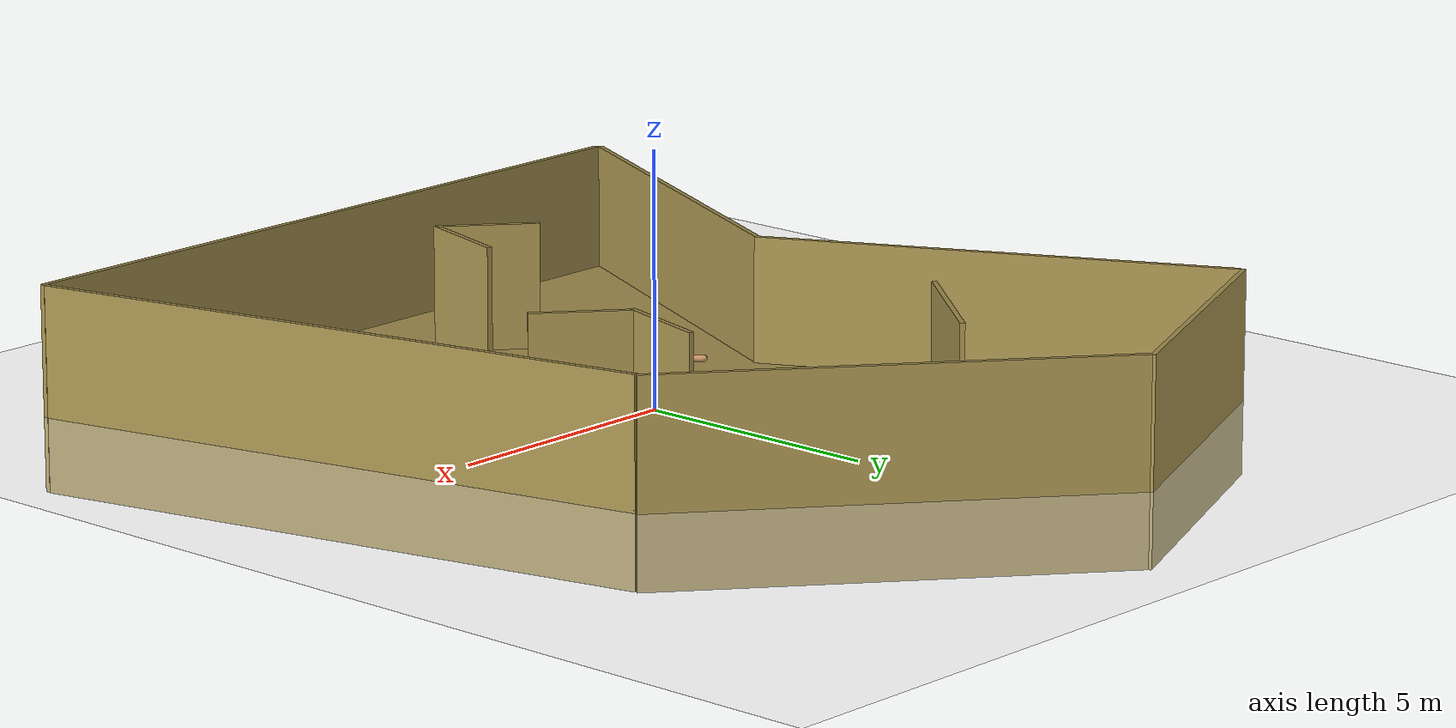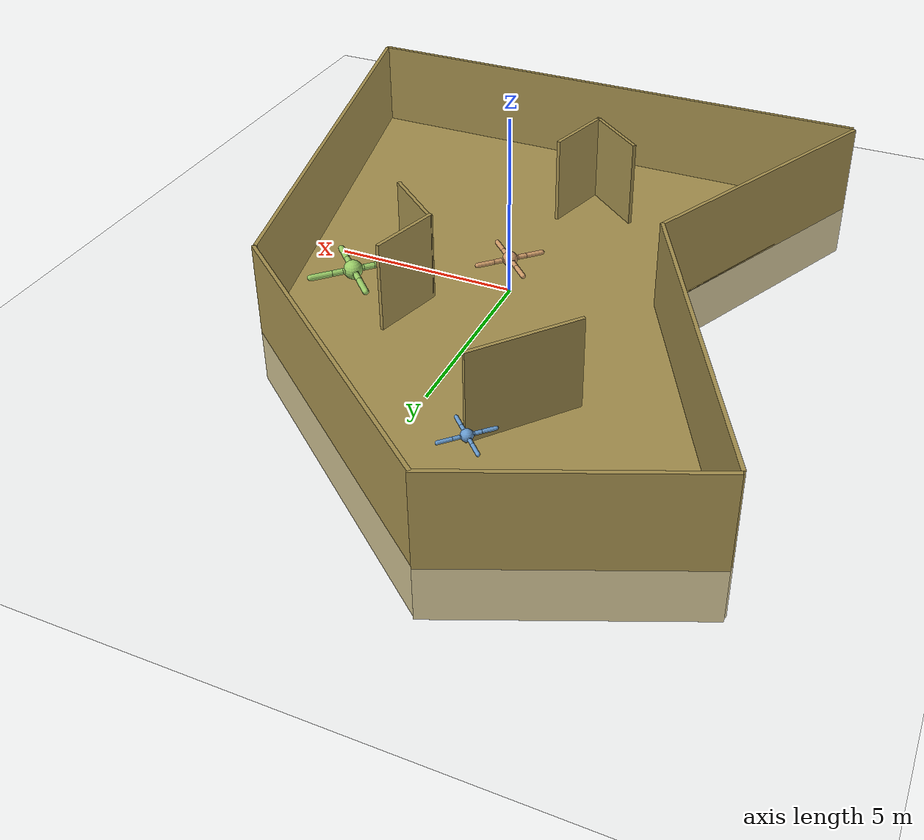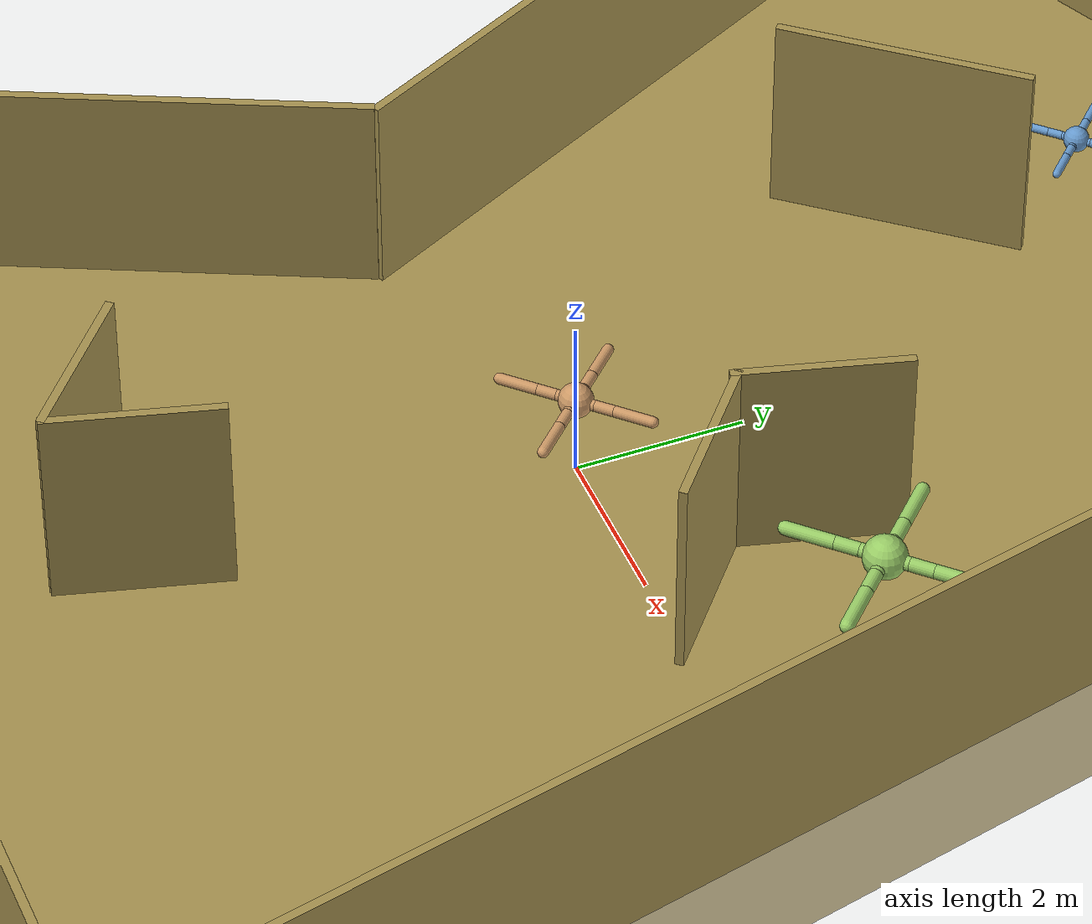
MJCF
<mujoco model="chase">
  <compiler angle="degree" coordinate="local" inertiafromgeom="true" meshdir="include/"/>
  <option integrator="RK4" timestep="0.01"/>
  <size nconmax="1000" njmax="1000"/>

  <default>
    <joint armature="1" damping="1" limited="true"/>
    <default class="ant">
      <geom conaffinity="1" condim="3" density="5.0" friction="1 0.5 0.5" margin="0.01" rgba="0.8 0.6 0.4 1" material="geom"/>
      <motor ctrllimited="true" ctrlrange="-0.3 0.3"/>
    </default>

    <default class="bug">
      <geom conaffinity="1" condim="3" density="5.0" friction="1 0.5 0.5" margin="0.01" rgba="0.4 0.6 0.8 1" material="geom"/>
      <motor ctrllimited="true" ctrlrange="-0.2 0.2"/>
    </default>
    <default class="spider">
      <geom conaffinity="1" condim="3" density="5.0" friction="1 0.5 0.5" margin="0.01" rgba="0.6 0.8 0.4 1" material="geom"/>
      <motor ctrllimited="true" ctrlrange="-0.3 0.3"/>
    </default>
  </default>
  <asset>
    <mesh name="platform" file="platform.STL"/>

    <texture builtin="gradient" height="100" rgb1=".8 .8 1" rgb2="0 0 0" type="skybox" width="100"/>
    <texture builtin="flat" height="1278" mark="cross" markrgb="1 1 1" name="texgeom" random="0.01" rgb1="0.8 0.6 0.4" rgb2="0.8 0.6 0.4" type="cube" width="127"/>
    <texture builtin="flat" height="100" name="floorplane" rgb1=".2 0.2 0.2" rgb2="0 0 0" type="2d" width="100"/>
    <texture builtin="flat" height="100" name="tatamiplane" rgb1=".65 0.57 0.31" rgb2="0 0 0" type="2d" width="100"/>
    <material name="MatPlane" reflectance="0.1" shininess="1" specular="1" texrepeat="1 1" texture="floorplane"/>
    <material name="TatamiPlane" reflectance="0.25" shininess="1" specular="1" texrepeat="1 1" texture="tatamiplane"/>
    <material name="geom" texture="texgeom" texuniform="true"/>
  </asset>
  <worldbody>
    <light cutoff="100" diffuse="1 1 1" dir="0 0 -1.3" directional="true" exponent="2" pos="0 0 1.3" specular=".5 .5 .5"/>
    <camera name="topcam" pos="0 0 30" zaxis="0 0 1" />
    <geom contype="1" conaffinity="1" friction="1 .1 .1" condim="3" material="MatPlane" name="floor" pos="0 0 -.025" rgba="1 1 1 1" size="20 20 0.125" type="plane"/>
    <geom name="platform" conaffinity="1" condim="3" contype="1" friction="1 .1 .1" material="TatamiPlane" mesh="platform" pos="-8 10 0" type="mesh" euler="90 0 0"/>

    <geom name="wall1" size="7.5 0.05 2.0" conaffinity="1" condim="3" contype="1" friction=".1 .1 .1" material="TatamiPlane" pos="0.35 -8.2 0.5" type="box" euler="0 0 0"/>
    <geom name="wall2" size="4.0 0.05 2.0" conaffinity="1" condim="3" contype="1" friction=".1 .1 .1" material="TatamiPlane" pos="-5.5 -4.5 0.5" type="box" euler="0 0 65"/>
    <geom name="wall3" size="4.7 0.05 2.0" conaffinity="1" condim="3" contype="1" friction=".1 .1 .1" material="TatamiPlane" pos="-5.9 3.3 0.5" type="box" euler="0 0 -63"/>
    <geom name="wall4" size="3.2 0.05 2.0" conaffinity="1" condim="3" contype="1" friction=".1 .1 .1" material="TatamiPlane" pos="-5.1 8.8 0.5" type="box" euler="0 0 23"/>
    <geom name="wall5" size="4.65 0.05 2.0" conaffinity="1" condim="3" contype="1" friction=".1 .1 .1" material="TatamiPlane" pos="1.4 7.1 0.5" type="box" euler="0 0 -39"/>
    <geom name="wall6" size="6.3 0.05 2.0" conaffinity="1" condim="3" contype="1" friction=".1 .1 .1" material="TatamiPlane" pos="6.4 -2.0 0.5" type="box" euler="0 0 -77"/>

    <geom name="ob_1" size="1.5 0.05 2.0" conaffinity="1" condim="3" contype="1" friction="1 .1 .1" material="TatamiPlane" pos="-2.5 5 0.5" type="box" euler="0 0 50"/>

    <geom name="ob_21" size="1.0 0.05 2.0" conaffinity="1" condim="3" contype="1" friction="1 .1 .1" material="TatamiPlane" pos="0 -5 0.5" type="box" euler="0 0 75"/>
    <geom name="ob_22" size="1.0 0.05 2.0" conaffinity="1" condim="3" contype="1" friction="1 .1 .1" material="TatamiPlane" pos="-1 -5.3 0.5" type="box" euler="0 0 -40"/>

    <geom name="ob_31" size="1.0 0.05 2.0" conaffinity="1" condim="3" contype="1" friction="1 .1 .1" material="TatamiPlane" pos="2 2 0.5" type="box" euler="0 0 75"/>
    <geom name="ob_32" size="1.0 0.05 2.0" conaffinity="1" condim="3" contype="1" friction="1 .1 .1" material="TatamiPlane" pos="2.5 .5 0.5" type="box" euler="0 0 -40"/>

    <include file="include/ant.xml" />
    <include file="include/bug.xml" />
    <include file="include/spider.xml" />
  </worldbody>
  <include file="include/ant-sensor-actuator.xml" />
  <include file="include/bug-sensor-actuator.xml" />
  <include file="include/spider-sensor-actuator.xml" />
</mujoco>

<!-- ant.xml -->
<mujocoinclude>
  <body name="torso" pos="0 0 1">
    <geom class="ant" name="torso_geom" pos="0 0 0" size="0.20" type="sphere"/>
    <joint armature="0" damping="0" limited="false" margin="0.01" name="root" pos="0 0 0" type="free"/>
    <!-- Front left leg -->
    <body name="front_left_leg" pos="0 0 0">
      <geom class="ant" fromto="0.0 0.0 0.0 -0.16 0.16 0.0" name="aux_1_geom" size="0.064" type="capsule"/>
      <body name="aux_11" pos="-0.16 0.16 0">
        <joint axis="0 0 1" name="hip_1" pos="0.0 0.0 0.0" range="-30 30" type="hinge"/>
        <geom class="ant" fromto="0.0 0.0 0.0 -0.16 0.16 0.0" name="front_left_leg_geom" size="0.064" type="capsule"/>
        <body name="aux_12" pos="-0.16 0.16 0">
          <joint axis="1 1 0" name="ankle_1" pos="0.0 0.0 0.0" range="-70 -30" type="hinge"/>
          <geom class="ant" fromto="0.0 0.0 0.0 -0.32 0.32 0.0" name="front_left_ankle_geom" size="0.064" type="capsule"/>
        </body>
      </body>
    </body>
    <!-- Front right leg -->
    <body name="front_right_leg" pos="0 0 0">
      <geom class="ant" fromto="0.0 0.0 0.0 0.16 0.16 0.0" name="aux_2_geom" size="0.064" type="capsule"/>
      <body name="aux_21" pos="0.16 0.16 0">
        <joint axis="0 0 1" name="hip_2" pos="0.0 0.0 0.0" range="-30 30" type="hinge"/>
        <geom class="ant" fromto="0.0 0.0 0.0 0.16 0.16 0.0" name="front_right_leg_geom" size="0.064" type="capsule"/>
        <body name="aux_22" pos="0.16 0.16 0">
          <joint axis="-1 1 0" name="ankle_2" pos="0.0 0.0 0.0" range="30 70" type="hinge"/>
          <geom class="ant" fromto="0.0 0.0 0.0 0.32 0.32 0.0" name="front_right_ankle_geom" size="0.064" type="capsule"/>
        </body>
      </body>
    </body>
    <!-- Back left leg -->
    <body name="back_left_leg" pos="0 0 0">
      <geom class="ant" fromto="0.0 0.0 0.0 -0.16 -0.16 0.0" name="aux_3_geom" size="0.064" type="capsule"/>
      <body name="aux_31" pos="-0.16 -0.16 0">
        <joint axis="0 0 1" name="hip_3" pos="0.0 0.0 0.0" range="-30 30" type="hinge"/>
        <geom class="ant" fromto="0.0 0.0 0.0 -0.16 -0.16 0.0" name="back_left_leg_geom" size="0.064" type="capsule"/>
        <body name="aux_32" pos="-0.16 -0.16 0">
          <joint axis="-1 1 0" name="ankle_3" pos="0.0 0.0 0.0" range="-70 -30" type="hinge"/>
          <geom class="ant" fromto="0.0 0.0 0.0 -0.32 -0.32 0.0" name="back_left_ankle_geom" size="0.064" type="capsule"/>
        </body>
      </body>
    </body>
    <body name="back_right_leg" pos="0 0 0">
      <geom class="ant" fromto="0.0 0.0 0.0 0.16 -0.16 0.0" name="aux_4_geom" size="0.064" type="capsule"/>
      <body name="aux_41" pos="0.16 -0.16 0">
        <joint axis="0 0 1" name="hip_4" pos="0.0 0.0 0.0" range="-30 30" type="hinge"/>
        <geom class="ant" fromto="0.0 0.0 0.0 0.16 -0.16 0.0" name="back_right_leg_geom" size="0.064" type="capsule"/>
        <body name="aux_42" pos="0.16 -0.16 0">
          <joint axis="1 1 0" name="ankle_4" pos="0.0 0.0 0.0" range="30 70" type="hinge"/>
          <geom class="ant" fromto="0.0 0.0 0.0 0.32 -0.32 0.0" name="back_right_ankle_geom" size="0.064" type="capsule"/>
        </body>
      </body>
    </body>
  </body>
</mujocoinclude>

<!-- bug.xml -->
<mujocoinclude>
  <body name="torso2" pos="-2 7 1">
    <geom class="bug" name="torso_geom2" pos="0 0 0" size="0.15" type="sphere"/>
    <joint armature="0" damping="0" limited="false" margin="0.01" name="root2" pos="0 0 0" type="free"/>
    <!-- Front left leg -->
    <body name="front_left_leg2" pos="0 0 0">
      <geom class="bug" fromto="0.0 0.0 0.0 -0.12 0.12 0.0" name="aux_1_geom2" size="0.048" type="capsule"/>
      <body name="aux_112" pos="-0.12 0.12 0">
        <joint axis="0 0 1" name="hip_12" pos="0.0 0.0 0.0" range="-30 30" type="hinge"/>
        <geom class="bug" fromto="0.0 0.0 0.0 -0.12 0.12 0.0" name="front_left_leg_geom2" size="0.048" type="capsule"/>
        <body name="aux_122" pos="-0.12 0.12 0">
          <joint axis="1 1 0" name="ankle_12" pos="0.0 0.0 0.0" range="-70 -30" type="hinge"/>
          <geom class="bug" fromto="0.0 0.0 0.0 -0.24 0.24 0.0" name="front_left_ankle_geom2" size="0.048" type="capsule"/>
        </body>
      </body>
    </body>
    <!-- Front right leg -->
    <body name="front_right_leg2" pos="0 0 0">
      <geom class="bug" fromto="0.0 0.0 0.0 0.12 0.12 0.0" name="aux_2_geom2" size="0.048" type="capsule"/>
      <body name="aux_212" pos="0.12 0.12 0">
        <joint axis="0 0 1" name="hip_22" pos="0.0 0.0 0.0" range="-30 30" type="hinge"/>
        <geom class="bug" fromto="0.0 0.0 0.0 0.12 0.12 0.0" name="front_right_leg_geom2" size="0.048" type="capsule"/>
        <body name="aux_222" pos="0.12 0.12 0">
          <joint axis="-1 1 0" name="ankle_22" pos="0.0 0.0 0.0" range="30 70" type="hinge"/>
          <geom class="bug" fromto="0.0 0.0 0.0 0.24 0.24 0.0" name="front_right_ankle_geom2" size="0.048" type="capsule"/>
        </body>
      </body>
    </body>
    <!-- Back left leg -->
    <body name="back_left_leg2" pos="0 0 0">
      <geom class="bug" fromto="0.0 0.0 0.0 -0.12 -0.12 0.0" name="aux_3_geom2" size="0.048" type="capsule"/>
      <body name="aux_312" pos="-0.12 -0.12 0">
        <joint axis="0 0 1" name="hip_32" pos="0.0 0.0 0.0" range="-30 30" type="hinge"/>
        <geom class="bug" fromto="0.0 0.0 0.0 -0.12 -0.12 0.0" name="back_left_leg_geom2" size="0.048" type="capsule"/>
        <body name="aux_322" pos="-0.12 -0.12 0">
          <joint axis="-1 1 0" name="ankle_32" pos="0.0 0.0 0.0" range="-70 -30" type="hinge"/>
          <geom class="bug" fromto="0.0 0.0 0.0 -0.24 -0.24 0.0" name="back_left_ankle_geom2" size="0.048" type="capsule"/>
        </body>
      </body>
    </body>
    <body name="back_right_leg2" pos="0 0 0">
      <geom class="bug" fromto="0.0 0.0 0.0 0.12 -0.12 0.0" name="aux_4_geom2" size="0.048" type="capsule"/>
      <body name="aux_412" pos="0.12 -0.12 0">
        <joint axis="0 0 1" name="hip_42" pos="0.0 0.0 0.0" range="-30 30" type="hinge"/>
        <geom class="bug" fromto="0.0 0.0 0.0 0.12 -0.12 0.0" name="back_right_leg_geom2" size="0.048" type="capsule"/>
        <body name="aux_422" pos="0.12 -0.12 0">
          <joint axis="1 1 0" name="ankle_42" pos="0.0 0.0 0.0" range="30 70" type="hinge"/>
          <geom class="bug" fromto="0.0 0.0 0.0 0.24 -0.24 0.0" name="back_right_ankle_geom2" size="0.048" type="capsule"/>
        </body>
      </body>
    </body>
  </body>
</mujocoinclude>

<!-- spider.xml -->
<mujocoinclude>
  <body name="torso3" pos="3.5 2.1 1">
    <geom class="spider" name="torso_geom3" pos="0 0 0" size="0.25" type="sphere"/>
    <joint armature="0" damping="0" limited="false" margin="0.01" name="root3" pos="0 0 0" type="free"/>
    <!-- Front left leg -->
    <body name="front_left_leg3" pos="0 0 0">
      <geom class="spider" fromto="0.0 0.0 0.0 -0.2 0.2 0.0" name="aux_1_geom3" size="0.08" type="capsule"/>
      <body name="aux_113" pos="-0.2 0.2 0">
        <joint axis="0 0 1" name="hip_13" pos="0.0 0.0 0.0" range="-30 30" type="hinge"/>
        <geom class="spider" fromto="0.0 0.0 0.0 -0.2 0.2 0.0" name="front_left_leg_geom3" size="0.08" type="capsule"/>
        <body name="aux_123" pos="-0.2 0.2 0">
          <joint axis="1 1 0" name="ankle_13" pos="0.0 0.0 0.0" range="-70 -30" type="hinge"/>
          <geom class="spider" fromto="0.0 0.0 0.0 -0.4 0.4 0.0" name="front_left_ankle_geom3" size="0.08" type="capsule"/>
        </body>
      </body>
    </body>
    <!-- Front right leg -->
    <body name="front_right_leg3" pos="0 0 0">
      <geom class="spider" fromto="0.0 0.0 0.0 0.2 0.2 0.0" name="aux_2_geom3" size="0.08" type="capsule"/>
      <body name="aux_213" pos="0.2 0.2 0">
        <joint axis="0 0 1" name="hip_23" pos="0.0 0.0 0.0" range="-30 30" type="hinge"/>
        <geom class="spider" fromto="0.0 0.0 0.0 0.2 0.2 0.0" name="front_right_leg_geom3" size="0.08" type="capsule"/>
        <body name="aux_223" pos="0.2 0.2 0">
          <joint axis="-1 1 0" name="ankle_23" pos="0.0 0.0 0.0" range="30 70" type="hinge"/>
          <geom class="spider" fromto="0.0 0.0 0.0 0.4 0.4 0.0" name="front_right_ankle_geom3" size="0.08" type="capsule"/>
        </body>
      </body>
    </body>
    <!-- Back left leg -->
    <body name="back_left_leg3" pos="0 0 0">
      <geom class="spider" fromto="0.0 0.0 0.0 -0.2 -0.2 0.0" name="aux_3_geom3" size="0.08" type="capsule"/>
      <body name="aux_313" pos="-0.2 -0.2 0">
        <joint axis="0 0 1" name="hip_33" pos="0.0 0.0 0.0" range="-30 30" type="hinge"/>
        <geom class="spider" fromto="0.0 0.0 0.0 -0.2 -0.2 0.0" name="back_left_leg_geom3" size="0.08" type="capsule"/>
        <body name="aux_323" pos="-0.2 -0.2 0">
          <joint axis="-1 1 0" name="ankle_33" pos="0.0 0.0 0.0" range="-70 -30" type="hinge"/>
          <geom class="spider" fromto="0.0 0.0 0.0 -0.4 -0.4 0.0" name="back_left_ankle_geom3" size="0.08" type="capsule"/>
        </body>
      </body>
    </body>
    <body name="back_right_leg3" pos="0 0 0">
      <geom class="spider" fromto="0.0 0.0 0.0 0.2 -0.2 0.0" name="aux_4_geom3" size="0.08" type="capsule"/>
      <body name="aux_413" pos="0.2 -0.2 0">
        <joint axis="0 0 1" name="hip_43" pos="0.0 0.0 0.0" range="-30 30" type="hinge"/>
        <geom class="spider" fromto="0.0 0.0 0.0 0.2 -0.2 0.0" name="back_right_leg_geom3" size="0.08" type="capsule"/>
        <body name="aux_423" pos="0.2 -0.2 0">
          <joint axis="1 1 0" name="ankle_43" pos="0.0 0.0 0.0" range="30 70" type="hinge"/>
          <geom class="spider" fromto="0.0 0.0 0.0 0.4 -0.4 0.0" name="back_right_ankle_geom3" size="0.08" type="capsule"/>
        </body>
      </body>
    </body>
  </body>
</mujocoinclude>

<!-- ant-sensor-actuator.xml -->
<mujocoinclude>
    <actuator>
    <motor class="ant" joint="hip_1" gear="150"/>
    <motor class="ant" joint="ankle_1" gear="150"/>
    <motor class="ant" joint="hip_2" gear="150"/>
    <motor class="ant" joint="ankle_2" gear="150"/>
    <motor class="ant" joint="hip_3" gear="150"/>
    <motor class="ant" joint="ankle_3" gear="150"/>
    <motor class="ant" joint="hip_4" gear="150"/>
    <motor class="ant" joint="ankle_4" gear="150"/>
  </actuator>
  <sensor>
    <!-- Positions -->
    <jointpos name='pos_hip_12' joint='hip_1' />
    <jointpos name='pos_hip_22' joint='hip_2' />
    <jointpos name='pos_hip_32' joint='hip_3' />
    <jointpos name='pos_hip_42' joint='hip_4' />
    <jointpos name='pos_ankle_12' joint='ankle_1' />
    <jointpos name='pos_ankle_22' joint='ankle_2' />
    <jointpos name='pos_ankle_32' joint='ankle_3' />
    <jointpos name='pos_ankle_42' joint='ankle_4' />
    <!-- Velocities -->
    <jointvel name='vel_hip_12'   joint='hip_1' />
    <jointvel name='vel_hip_22'   joint='hip_2' />
    <jointvel name='vel_hip_32'   joint='hip_3' />
    <jointvel name='vel_hip_42'   joint='hip_4' />
    <jointvel name='vel_ankle_12' joint='ankle_1' />
    <jointvel name='vel_ankle_22' joint='ankle_2' />
    <jointvel name='vel_ankle_32' joint='ankle_3' />
    <jointvel name='vel_ankle_42' joint='ankle_4' />
  </sensor>
</mujocoinclude>

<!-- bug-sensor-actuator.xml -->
<mujocoinclude>
    <actuator>
    <motor class="bug" joint="hip_12" gear="150"/>
    <motor class="bug" joint="ankle_12" gear="150"/>
    <motor class="bug" joint="hip_22" gear="150"/>
    <motor class="bug" joint="ankle_22" gear="150"/>
    <motor class="bug" joint="hip_32" gear="150"/>
    <motor class="bug" joint="ankle_32" gear="150"/>
    <motor class="bug" joint="hip_42" gear="150"/>
    <motor class="bug" joint="ankle_42" gear="150"/>
  </actuator>
  <sensor>
    <!-- Positions -->
    <jointpos name='pos_hip_1' joint='hip_12' />
    <jointpos name='pos_hip_2' joint='hip_22' />
    <jointpos name='pos_hip_3' joint='hip_32' />
    <jointpos name='pos_hip_4' joint='hip_42' />
    <jointpos name='pos_ankle_1' joint='ankle_12' />
    <jointpos name='pos_ankle_2' joint='ankle_22' />
    <jointpos name='pos_ankle_3' joint='ankle_32' />
    <jointpos name='pos_ankle_4' joint='ankle_42' />
    <!-- Velocities -->
    <jointvel name='vel_hip_1'   joint='hip_12' />
    <jointvel name='vel_hip_2'   joint='hip_22' />
    <jointvel name='vel_hip_3'   joint='hip_32' />
    <jointvel name='vel_hip_4'   joint='hip_42' />
    <jointvel name='vel_ankle_1' joint='ankle_12' />
    <jointvel name='vel_ankle_2' joint='ankle_22' />
    <jointvel name='vel_ankle_3' joint='ankle_32' />
    <jointvel name='vel_ankle_4' joint='ankle_42' />
  </sensor>
</mujocoinclude>

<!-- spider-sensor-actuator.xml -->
<mujocoinclude>
    <actuator>
    <motor class="spider" joint="hip_13" gear="150"/>
    <motor class="spider" joint="ankle_13" gear="150"/>
    <motor class="spider" joint="hip_23" gear="150"/>
    <motor class="spider" joint="ankle_23" gear="150"/>
    <motor class="spider" joint="hip_33" gear="150"/>
    <motor class="spider" joint="ankle_33" gear="150"/>
    <motor class="spider" joint="hip_43" gear="150"/>
    <motor class="spider" joint="ankle_43" gear="150"/>
  </actuator>
  <sensor>
    <!-- Positions -->
    <jointpos name='pos_hip_13' joint='hip_13' />
    <jointpos name='pos_hip_23' joint='hip_23' />
    <jointpos name='pos_hip_33' joint='hip_33' />
    <jointpos name='pos_hip_43' joint='hip_43' />
    <jointpos name='pos_ankle_13' joint='ankle_13' />
    <jointpos name='pos_ankle_23' joint='ankle_23' />
    <jointpos name='pos_ankle_33' joint='ankle_33' />
    <jointpos name='pos_ankle_43' joint='ankle_43' />
    <!-- Velocities -->
    <jointvel name='vel_hip_13'   joint='hip_13' />
    <jointvel name='vel_hip_23'   joint='hip_23' />
    <jointvel name='vel_hip_33'   joint='hip_33' />
    <jointvel name='vel_hip_43'   joint='hip_43' />
    <jointvel name='vel_ankle_13' joint='ankle_13' />
    <jointvel name='vel_ankle_23' joint='ankle_23' />
    <jointvel name='vel_ankle_33' joint='ankle_33' />
    <jointvel name='vel_ankle_43' joint='ankle_43' />
  </sensor>
</mujocoinclude>
